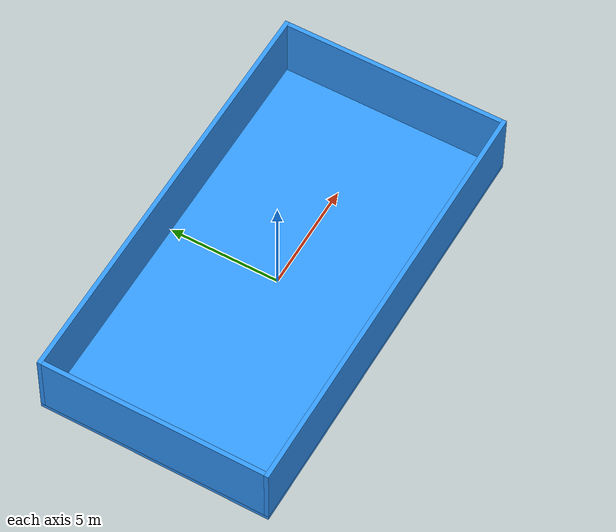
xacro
<?xml version="1.0"?>
<robot name="pool" xmlns:xacro="http://www.ros.org/wiki/xacro">

  <!-- Pool Parameters -->
  <!-- Dimensions are in meters. -->
  <xacro:property name="length" value="19.0" />
  <xacro:property name="width" value="10.0" />
  <xacro:property name="depth" value="3.0" />
  <xacro:property name="thickness" value="0.2" />

  <!-- Base Link -->
  <link name="base_link">

    <!-- ================= FLOOR ================= -->
    <visual>
      <origin xyz="0 0 ${-thickness/2}" rpy="0 0 0" />
      <geometry>
        <box size="${length + 2*thickness} ${width + 2*thickness} ${thickness}" />
      </geometry>
      <material name="blue">
        <color rgba="0.2 0.6 1.0 1.0" />
      </material>
    </visual>
    <collision>
      <origin xyz="0 0 ${-thickness/2}" rpy="0 0 0" />
      <geometry>
        <box size="${length + 2*thickness} ${width + 2*thickness} ${thickness}" />
      </geometry>
    </collision>

    <!-- ================= LEFT WALL (+y) ================= -->
    <visual>
      <origin xyz="0 ${width/2 + thickness/2} ${depth/2}" rpy="0 0 0" />
      <geometry>
        <box size="${length + 2*thickness} ${thickness} ${depth}" />
      </geometry>
      <material name="blue" />
    </visual>
    <collision>
      <origin xyz="0 ${width/2 + thickness/2} ${depth/2}" rpy="0 0 0" />
      <geometry>
        <box size="${length + 2*thickness} ${thickness} ${depth}" />
      </geometry>
    </collision>

    <!-- ================= RIGHT WALL (-y) ================= -->
    <visual>
      <origin xyz="0 ${-width/2 - thickness/2} ${depth/2}" rpy="0 0 0" />
      <geometry>
        <box size="${length + 2*thickness} ${thickness} ${depth}" />
      </geometry>
      <material name="blue" />
    </visual>
    <collision>
      <origin xyz="0 ${-width/2 - thickness/2} ${depth/2}" rpy="0 0 0" />
      <geometry>
        <box size="${length + 2*thickness} ${thickness} ${depth}" />
      </geometry>
    </collision>

    <!-- ================= FRONT WALL (+x) ================= -->
    <!-- Front and back walls fit inside the left and right walls to seal the corners -->
    <visual>
      <origin xyz="${length/2 + thickness/2} 0 ${depth/2}" rpy="0 0 0" />
      <geometry>
        <box size="${thickness} ${width} ${depth}" />
      </geometry>
      <material name="blue" />
    </visual>
    <collision>
      <origin xyz="${length/2 + thickness/2} 0 ${depth/2}" rpy="0 0 0" />
      <geometry>
        <box size="${thickness} ${width} ${depth}" />
      </geometry>
    </collision>

    <!-- ================= BACK WALL (-x) ================= -->
    <visual>
      <origin xyz="${-length/2 - thickness/2} 0 ${depth/2}" rpy="0 0 0" />
      <geometry>
        <box size="${thickness} ${width} ${depth}" />
      </geometry>
      <material name="blue" />
    </visual>
    <collision>
      <origin xyz="${-length/2 - thickness/2} 0 ${depth/2}" rpy="0 0 0" />
      <geometry>
        <box size="${thickness} ${width} ${depth}" />
      </geometry>
    </collision>

    <!-- Dummy Inertia (Gazebo requires inertial tags for objects, even if static) -->
    <inertial>
      <mass value="5000.0" />
      <origin xyz="0 0 0" />
      <inertia ixx="1.0" ixy="0.0" ixz="0.0" iyy="1.0" iyz="0.0" izz="1.0" />
    </inertial>
  </link>

  <!-- Gazebo specific plugins and material mapping -->
  <gazebo reference="base_link">
    <visual>
      <material>
        <ambient>0.2 0.6 1.0 1.0</ambient>
        <diffuse>0.2 0.6 1.0 1.0</diffuse>
        <specular>0.1 0.1 0.1 1.0</specular>
      </material>
    </visual>
  </gazebo>

  <!-- Make the pool static so it doesn't fall due to gravity or get pushed by robots -->
  <gazebo>
    <static>true</static>
  </gazebo>

</robot>
